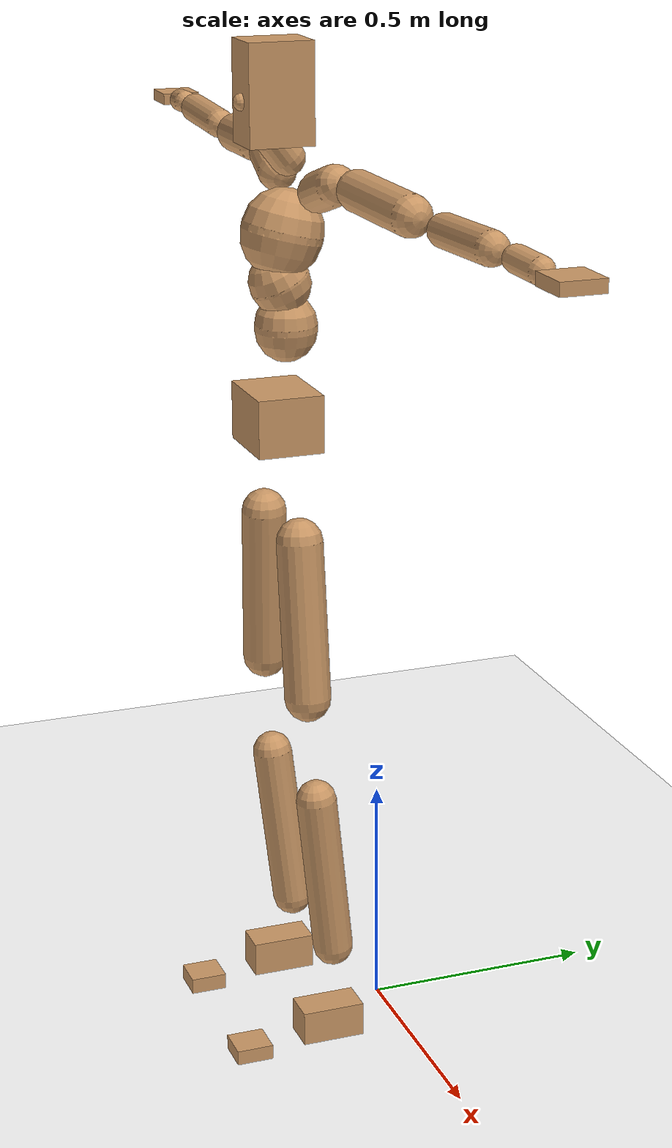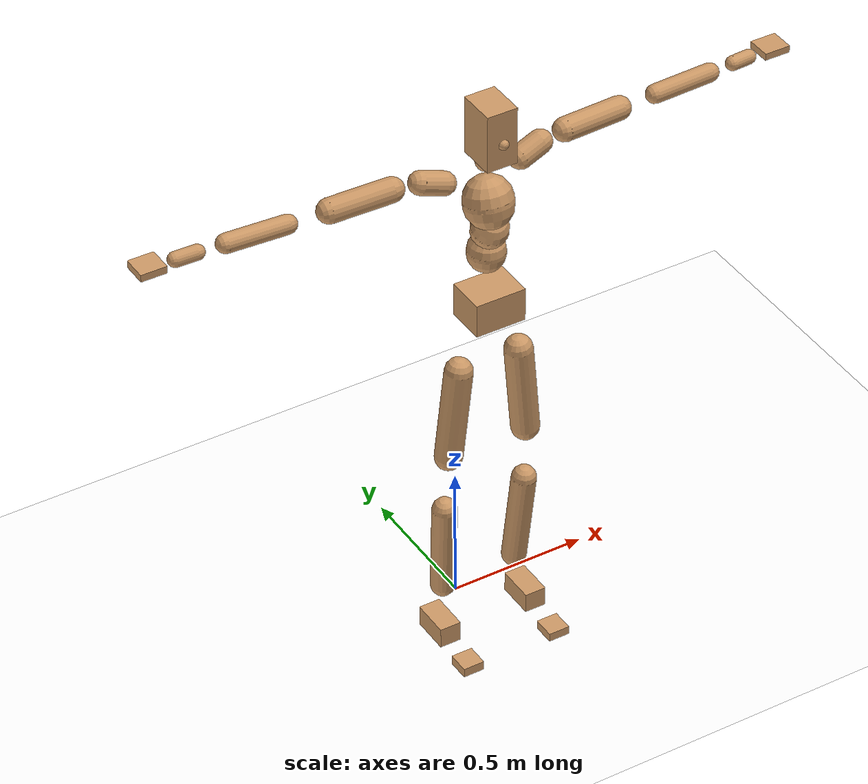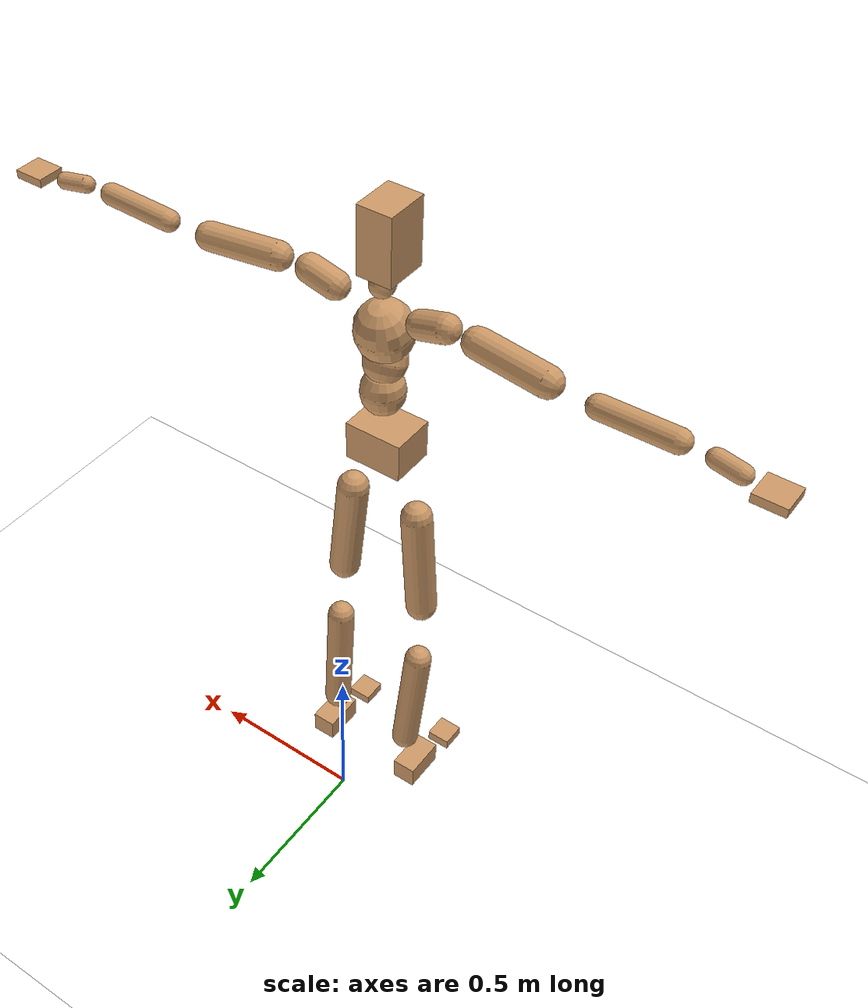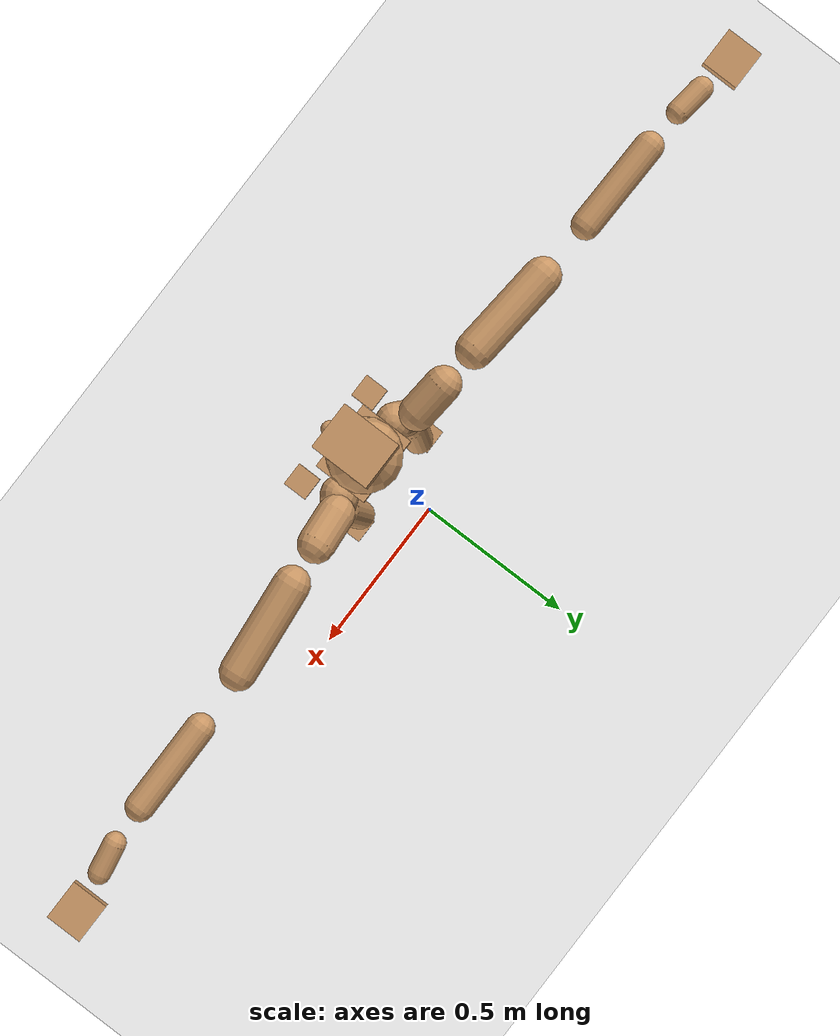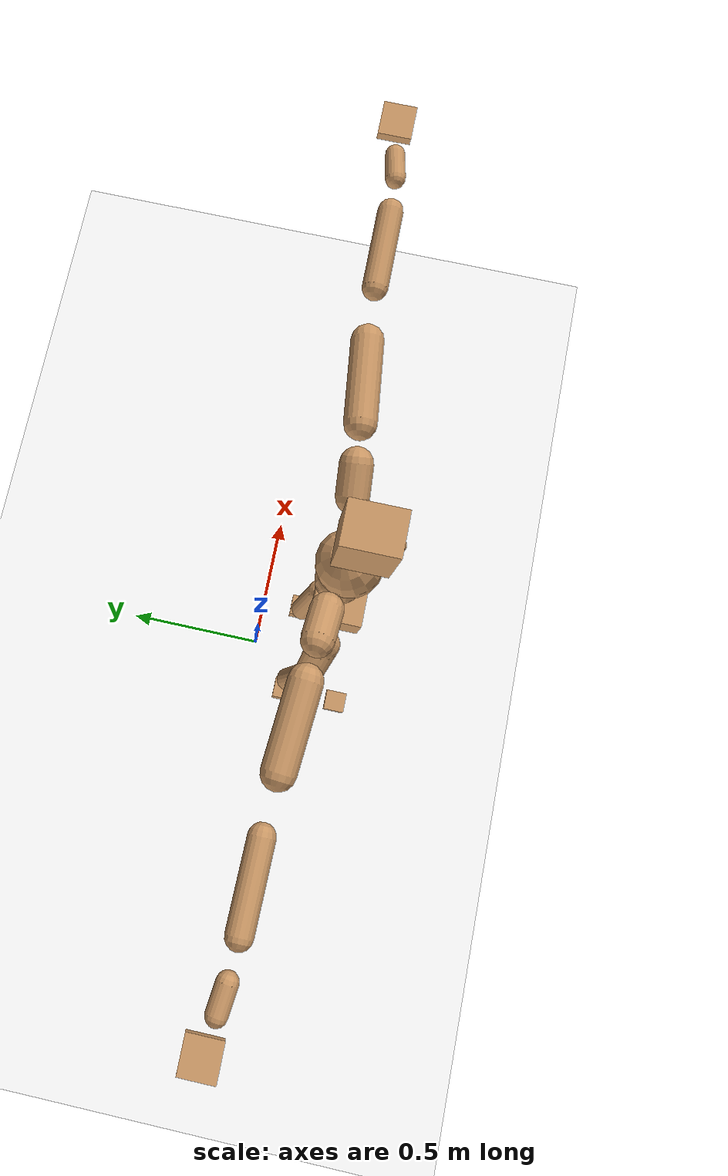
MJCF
<mujoco model="humanoid">
  <option integrator="implicitfast" />

  <visual>
    <global offwidth="1280" offheight="960" />
    <headlight active="1" ambient="0.34 0.34 0.34" diffuse="0.5 0.5 0.5" />
  </visual>

  <default>
    <joint damping="2" stiffness="2" armature="0.01" limited="true" solimplimit="0 .99 .01" />
    <geom condim="1" friction="0.7 0.005 0.0001" solimp=".99 .99 .003" solref="0.015 1" margin="0.001" rgba="0.8 0.6 .4 1" />
    <default class="smplcontact">
      <geom condim="3" friction="1. 0.005 0.0001" solref="0.015 1" solimp="0.98 0.98 0.001" priority="1" />
    </default>
    <default class="stiff_medium">
      <joint stiffness="10" />
    </default>
    <default class="stiff_medium_higher">
      <joint stiffness="50" />
    </default>
    <default class="stiff_high">
      <joint stiffness="100" />
    </default>
  </default>

  <asset>
    <texture type="skybox" builtin="gradient" rgb1="0.99 0.99 0.99" rgb2="0.608 0.828 0.892" width="100" />
    <texture builtin="flat" height="1278" mark="cross" markrgb="1 1 1" name="texgeom" random="0.01" rgb1="0.8 0.6 0.4" rgb2="0.8 0.6 0.4" type="cube" width="127" />
    <texture name="texplane" type="2d" builtin="checker" markrgb="1 1 1" rgb1="0.756 0.772 0.76" rgb2="0.6 0.6 0.6" width="100" height="100" />
    <material name="MatPlane" reflectance="0.5" texture="texplane" texrepeat="1 1" texuniform="true" />
    <material name="geom" texture="texgeom" texuniform="true" />
  </asset>

  <worldbody>
    <light name="tracking_light" pos="0 0 7" dir="0 0 -1" directional="true" cutoff="100" exponent="1" diffuse="1 1 1" specular="0.1 0.1 0.1" mode="trackcom" />
    <camera name="back" pos="0 3 2.4" xyaxes="-1 0 0 0 -1 2" mode="trackcom" />
    <camera name="side" pos="-3 0 2.4" xyaxes="0 -1 0 1 0 2" mode="trackcom" />
    <camera name="front_side" pos="-2.8 -2.8 0.8" xyaxes="0.5 -0.5 0 0.1 0.1 1" mode="trackcom" />
    <geom condim="3" name="floor" pos="0 0 0" rgba="1 1 1 1" size="100 100 .2" type="plane" material="MatPlane" />
    <body name="Pelvis" pos="-0.0018 -0.2233 1.38993" euler="90 0 0">
      <site name="Pelvis" size="0.01" />
      <freejoint name="Pelvis" />
      <geom type="box" pos="-0.0000 -0.0121 -0.0055" size="0.090865 0.06137 0.07055" quat="1.0000 0.0000 0.0000 0.0000" density="3165.830099" name="Pelvis" />
      <body name="L_Hip" pos="0.10425 -0.1371 -0.0102">
        <joint name="L_Hip_x" type="hinge" pos="0 0 0" axis="1 0 0" stiffness="12.169615104166667" range="-160.0 22.92" class="stiff_medium" damping="21.529473071814813" armature="0.01692806977898033"/>
        <joint name="L_Hip_y" type="hinge" pos="0 0 0" axis="0 1 0" stiffness="12.046747812500001" range="-70.0 70.0" class="stiff_medium" damping="10.798581112865591" armature="0.00967973729226246"/>
        <joint name="L_Hip_z" type="hinge" pos="0 0 0" axis="0 0 1" stiffness="12.057664166666665" range="-28.65 90.0" class="stiff_medium" damping="14.291208961157817" armature="0.016938492459932158"/>
        <geom type="capsule" density="2040.816327" fromto="0.01035 -0.1125 -0.00135 0.0411 -0.4503 -0.0054" size="0.0492" name="L_Hip" />
        <body name="L_Knee" pos="0.05145 -0.5628 -0.00675">
          <joint name="L_Knee_x" type="hinge" pos="0 0 0" axis="1 0 0" range="-5.16 171.89" damping="10.487260202512825" armature="0.015065006258335938" stiffness="2.2814176250000004"/>
          <joint name="L_Knee_y" type="hinge" pos="0 0 0" axis="0 1 0" range="-4.58 6.88" damping="8.076823509595332" armature="0.008583091260769572" stiffness="2.375130504528985"/>
          <joint name="L_Knee_z" type="hinge" pos="0 0 0" axis="0 0 1" range="-6.88 4.58" damping="10.435775860746794" armature="0.015107818478948246" stiffness="2.252670901152482"/>
          <geom type="capsule" density="1234.567901" fromto="-0.00405 -0.1194 -0.01305 -0.01635 -0.4776 -0.0525" size="0.04328" name="L_Knee" />
          <body name="L_Ankle" pos="-0.0204 -0.597 -0.06555">
            <joint name="L_Ankle_x" type="hinge" pos="0 0 0" axis="1 0 0" range="-45.84 45.84" class="stiff_medium" damping="4.904065855906098" armature="0.008698590103828127" stiffness="7.679999999999999"/>
            <joint name="L_Ankle_y" type="hinge" pos="0 0 0" axis="0 1 0" range="-74.48 22.92" class="stiff_medium" damping="2.4234373706763983" armature="0.008496887571746145" stiffness="7.679999999999999"/>
            <joint name="L_Ankle_z" type="hinge" pos="0 0 0" axis="0 0 1" range="-4.58 4.58" class="stiff_medium" damping="4.454365704406647" armature="0.007176422825735725" stiffness="7.679999999999999"/>
            <geom type="box" pos="0.03495 -0.03585 0.0363" size="0.03864 0.03712 0.068" quat="1.0000 0.0000 0.0000 0.0000" density="449.071558" name="L_Ankle" class="smplcontact" />
            <body name="L_Toe" pos="0.0396 -0.0837 0.17895">
              <joint name="L_Toe_x" type="hinge" pos="0 0 0" axis="1 0 0" range="-91.67 22.92" armature="0.006410764991481244" damping="1.4033484974813055" stiffness="1.5359999999999998"/>
              <joint name="L_Toe_y" type="hinge" pos="0 0 0" axis="0 1 0" range="-4.58 4.58" armature="0.005484931343289602" damping="1.2980642929603161" stiffness="1.5359999999999998"/>
              <joint name="L_Toe_z" type="hinge" pos="0 0 0" axis="0 0 1" range="-4.58 4.58" armature="0.003612945539412348" damping="1.0535164306775064" stiffness="1.5359999999999998"/>
              <geom type="box" pos="-0.0045 0.00825 0.0372" size="0.03824 0.016 0.03968" quat="1.0000 0.0000 0.0000 0.0000" density="423.206892" name="L_Toe" class="smplcontact" />
            </body>
          </body>
        </body>
      </body>
      <body name="R_Hip" pos="-0.10155 -0.13575 -0.00645">
        <joint name="R_Hip_x" type="hinge" pos="0 0 0" axis="1 0 0" stiffness="12.169615104166667" range="-160.0 22.92" class="stiff_medium" damping="21.529473071814813" armature="0.01692806977898033"/>
        <joint name="R_Hip_y" type="hinge" pos="0 0 0" axis="0 1 0" stiffness="12.046747812500001" range="-70.0 70.0" class="stiff_medium" damping="10.798581112865591" armature="0.00967973729226246"/>
        <joint name="R_Hip_z" type="hinge" pos="0 0 0" axis="0 0 1" stiffness="12.057664166666665" range="-90.0 28.65" class="stiff_medium" damping="14.291208961157817" armature="0.016938492459932158"/>
        <geom type="capsule" density="2040.816327" fromto="-0.01155 -0.11475 -0.0027 -0.0459 -0.45915 -0.01065" size="0.04848" name="R_Hip" />
        <body name="R_Knee" pos="-0.05745 -0.5739 -0.01335">
          <joint name="R_Knee_x" type="hinge" pos="0 0 0" axis="1 0 0" range="-5.16 171.89" damping="10.487260202512825" armature="0.015065006258335938" stiffness="2.2814176250000004"/>
          <joint name="R_Knee_y" type="hinge" pos="0 0 0" axis="0 1 0" range="-6.88 4.58" damping="8.076823509595332" armature="0.008583091260769572" stiffness="2.375130504528985"/>
          <joint name="R_Knee_z" type="hinge" pos="0 0 0" axis="0 0 1" range="-4.58 6.88" damping="10.435775860746794" armature="0.015107818478948246" stiffness="2.252670901152482"/>
          <geom type="capsule" density="1234.567901" fromto="0.0048 -0.11955 -0.01275 0.0189 -0.47805 -0.0507" size="0.04328" name="R_Knee" />
          <body name="R_Ankle" pos="0.0237 -0.5976 -0.06345">
            <joint name="R_Ankle_x" type="hinge" pos="0 0 0" axis="1 0 0" range="-45.84 45.84" class="stiff_medium" damping="4.904065855906098" armature="0.008698590103828127" stiffness="7.679999999999999"/>
            <joint name="R_Ankle_y" type="hinge" pos="0 0 0" axis="0 1 0" range="-22.92 74.48" class="stiff_medium" damping="2.4234373706763983" armature="0.008496887571746145" stiffness="7.679999999999999"/>
            <joint name="R_Ankle_z" type="hinge" pos="0 0 0" axis="0 0 1" range="-4.58 4.58" class="stiff_medium" damping="4.454365704406647" armature="0.007176422825735725" stiffness="7.679999999999999"/>
            <geom type="box" pos="-0.0318 -0.0261 0.0384" size="0.03864 0.03824 0.0692" quat="1.0000 0.0000 0.0000 0.0000" density="434.700981" name="R_Ankle" class="smplcontact" />
            <body name="R_Toe" pos="-0.0381 -0.07215 0.18495">
              <joint name="R_Toe_x" type="hinge" pos="0 0 0" axis="1 0 0" range="-91.67 22.92" armature="0.006410764991481244" damping="1.4033484974813055" stiffness="1.5359999999999998"/>
              <joint name="R_Toe_y" type="hinge" pos="0 0 0" axis="0 1 0" range="-4.58 4.58" armature="0.005484931343289602" damping="1.2980642929603161" stiffness="1.5359999999999998"/>
              <joint name="R_Toe_z" type="hinge" pos="0 0 0" axis="0 0 1" range="-4.58 4.58" armature="0.003612945539412348" damping="1.0535164306775064" stiffness="1.5359999999999998"/>
              <geom type="box" pos="0.0063 0.00675 0.03405" size="0.03832 0.01728 0.03944" quat="1.0000 0.0000 0.0000 0.0000" density="407.384095" name="R_Toe" class="smplcontact" />
            </body>
          </body>
        </body>
      </body>
      <body name="Torso" pos="-0.0025 0.109 -0.0267">
        <joint name="Torso_x" type="hinge" pos="0 0 0" axis="1 0 0" range="-25.78 57.3" class="stiff_medium" damping="11.249635746720276" armature="0.007804134641765574" stiffness="7.207251041666667"/>
        <joint name="Torso_y" type="hinge" pos="0 0 0" axis="0 1 0" range="-57.3 57.3" class="stiff_high" damping="20.05969828917201" armature="0.0139324282443363" stiffness="72.20412127659574"/>
        <joint name="Torso_z" type="hinge" pos="0 0 0" axis="0 0 1" range="-34.38 34.38" class="stiff_high" damping="16.695147071302408" armature="0.009916820498493354" stiffness="70.26645681818181"/>
        <geom type="capsule" density="2040.816327" fromto="0.0025 0.0608 0.0005 0.003 0.0743 0.0006" size="0.065365" name="Torso" />
        <body name="Spine" pos="0.0055 0.1352 0.0011">
          <joint name="Spine_x" type="hinge" pos="0 0 0" axis="1 0 0" stiffness="7.440407291666666" range="-25.78 57.3" class="stiff_medium" damping="11.740807544291355" armature="0.008234110872247447"/>
          <joint name="Spine_y" type="hinge" pos="0 0 0" axis="0 1 0" stiffness="7.7584475" range="-57.3 57.3" class="stiff_high" damping="8.336368909664587" armature="0.01399584263596679"/>
          <joint name="Spine_z" type="hinge" pos="0 0 0" axis="0 0 1" stiffness="15.332734893617019" range="-34.38 34.38" class="stiff_high" damping="11.248532857716054" armature="0.011461451985736558"/>
          <geom type="capsule" density="2040.816327" fromto="0.0007 0.0238 0.0114 0.0008 0.0291 0.014" size="0.064175" name="Spine" />
          <body name="Chest" pos="0.0015 0.0529 0.0254">
            <joint name="Chest_x" type="hinge" pos="0 0 0" axis="1 0 0" stiffness="8.003657173913044" range="-25.78 57.3" class="stiff_medium" damping="12.363972084001938" armature="0.008488775255960262"/>
            <joint name="Chest_y" type="hinge" pos="0 0 0" axis="0 1 0" stiffness="9.188864186046512" range="-57.3 57.3" class="stiff_high" damping="9.076660553574975" armature="0.014009104719167938"/>
            <joint name="Chest_z" type="hinge" pos="0 0 0" axis="0 0 1" stiffness="15.924538222222221" range="-34.38 34.38" class="stiff_high" damping="11.796414570397653" armature="0.012136702592671206"/>
            <geom type="capsule" density="2040.816327" fromto="-0.0009 0.0682 -0.0173 -0.001 0.0833 -0.0212" size="0.08517" name="Chest" />
            <body name="Neck" pos="-0.0028 0.2139 -0.0429">
              <joint name="Neck_x" type="hinge" pos="0 0 0" axis="1 0 0" range="-28.65 57.3" class="stiff_medium_higher" damping="6.666103964048796" armature="0.006435654306996814" stiffness="34.524028125"/>
              <joint name="Neck_y" type="hinge" pos="0 0 0" axis="0 1 0" range="-40.11 40.11" class="stiff_medium_higher" damping="6.495163595532797" armature="0.006106427151925058" stiffness="34.54323541666667"/>
              <joint name="Neck_z" type="hinge" pos="0 0 0" axis="0 0 1" range="-40.11 40.11" class="stiff_medium_higher" damping="6.673822506192289" armature="0.00644051335907919" stiffness="34.57791666666667"/>
              <geom type="capsule" density="1000" fromto="0.001 0.013 0.0103 0.0041 0.052 0.0411" size="0.03706" name="Neck" />
              <body name="Head" pos="0.00494 0.06175 0.048735">
                <joint name="Head_x" type="hinge" pos="0 0 0" axis="1 0 0" range="-28.65 57.3" class="stiff_medium_higher" damping="1.3185946842092995" armature="0.006276413043191909" stiffness="34.6275"/>
                <joint name="Head_y" type="hinge" pos="0 0 0" axis="0 1 0" range="-40.11 40.11" class="stiff_medium_higher" damping="1.2823363817030833" armature="0.00593598511240833" stiffness="34.6275"/>
                <joint name="Head_z" type="hinge" pos="0 0 0" axis="0 0 1" range="-40.11 40.11" class="stiff_medium_higher" damping="1.3203641162255402" armature="0.006293269075936942" stiffness="34.6275"/>
                <geom type="box" pos="-0.00399 0.08322 -0.01102" size="0.05454 0.10386 0.0684" quat="1.0000 0.0000 0.0000 0.0000" density="1018.069894" name="Head" />
                <geom type="capsule" name="nose" size="0.018 0.009" pos="0 0.0665 0.0475" quat="1 0 0 0" mass="0" contype="0" conaffinity="0" />
              </body>
            </body>
            <body name="L_Thorax" pos="0.11032 0.17038 -0.04774">
              <joint name="L_Thorax_x" type="hinge" pos="0 0 0" axis="1 0 0" range="-10.89 4.58" class="stiff_medium_higher" damping="20.482438466690972" armature="0.010040373941433294" stiffness="52.230410937500004"/>
              <joint name="L_Thorax_y" type="hinge" pos="0 0 0" axis="0 1 0" range="-28.65 17.19" class="stiff_medium_higher" damping="24.49886040985026" armature="0.014178353362015868" stiffness="52.91465677083333"/>
              <joint name="L_Thorax_z" type="hinge" pos="0 0 0" axis="0 0 1" range="-31.51 40.11" class="stiff_medium_higher" damping="24.50010028143286" armature="0.014182281674176393" stiffness="52.905354687499994"/>
              <geom type="capsule" density="1000" fromto="0.02548 0.00854 -0.00252 0.10192 0.03416 -0.00994" size="0.04168" name="L_Thorax" />
              <body name="L_Shoulder" pos="0.1274 0.0427 -0.01246">
                <joint name="L_Shoulder_x" type="hinge" pos="0 0 0" axis="1 0 0" range="-97.4 97.4" class="stiff_medium" damping="5.54428182110267" armature="0.008253764961067488" stiffness="10.3451310660461"/>
                <joint name="L_Shoulder_y" type="hinge" pos="0 0 0" axis="0 1 0" range="-108.86 80.21" class="stiff_medium" damping="7.275199924466549" armature="0.013954779840497453" stiffness="10.535723749999999"/>
                <joint name="L_Shoulder_z" type="hinge" pos="0 0 0" axis="0 0 1" range="-97.4 85.94" class="stiff_medium" damping="7.270630771793183" armature="0.013959146049897795" stiffness="10.5192028125"/>
                <geom type="capsule" density="1000" fromto="0.07266 -0.00364 -0.0077 0.29078 -0.01428 -0.0308" size="0.04136" name="L_Shoulder" />
                <body name="L_Elbow" pos="0.36344 -0.01792 -0.0385">
                  <joint name="L_Elbow_x" type="hinge" pos="0 0 0" axis="1 0 0" range="-17.19 4.58" damping="3.761947498802039" armature="0.005684788079689243" stiffness="1.9915956458333335"/>
                  <joint name="L_Elbow_y" type="hinge" pos="0 0 0" axis="0 1 0" range="-180.0 17.19" damping="5.663989086512743" armature="0.012878012747804207" stiffness="1.9929020416666665"/>
                  <joint name="L_Elbow_z" type="hinge" pos="0 0 0" axis="0 0 1" range="-100.84 4.58" damping="5.665140058693131" armature="0.012900776049366134" stiffness="1.9901941875000002"/>
                  <geom type="capsule" density="1000" fromto="0.06972 0.00252 -0.00028 0.27916 0.01008 -0.00126" size="0.0324" name="L_Elbow" />
                  <body name="L_Wrist" pos="0.34888 0.0126 -0.00168">
                    <joint name="L_Wrist_x" type="hinge" pos="0 0 0" axis="1 0 0" range="-180.0 22.92" armature="0.005479975993685243" damping="1.3401334874553132" stiffness="1.6386547735507246"/>
                    <joint name="L_Wrist_y" type="hinge" pos="0 0 0" axis="0 1 0" range="-17.19 17.19" armature="0.009871088387300156" damping="1.808949135984064" stiffness="1.6575157916666667"/>
                    <joint name="L_Wrist_z" type="hinge" pos="0 0 0" axis="0 0 1" range="-22.92 22.92" armature="0.010103944512787441" damping="1.8235098414234472" stiffness="1.6454901041666667"/>
                    <geom type="capsule" density="1000" fromto="0.02352 -0.00224 -0.0042 0.09408 -0.0091 -0.0168" size="0.02544" name="L_Wrist" class="smplcontact" />
                    <body name="L_Hand" pos="0.1176 -0.01148 -0.02086">
                      <joint name="L_Hand_x" type="hinge" pos="0 0 0" axis="1 0 0" range="-17.19 17.19" armature="0.0035712375392624386" damping="1.0119017873575116" stiffness="1.4336"/>
                      <joint name="L_Hand_y" type="hinge" pos="0 0 0" axis="0 1 0" range="-51.57 51.57" armature="0.006837615817148067" damping="1.4001718491287753" stiffness="1.4336"/>
                      <joint name="L_Hand_z" type="hinge" pos="0 0 0" axis="0 0 1" range="-91.67 91.67" armature="0.007708313575910548" damping="1.4866498136700088" stiffness="1.4336"/>
                      <geom type="box" pos="0.06902 0.0014 -0.00812" size="0.0468 0.01264 0.04304" quat="1.0000 0.0000 0.0000 0.0000" density="400.552564" name="L_Hand" class="smplcontact" />
                    </body>
                  </body>
                </body>
              </body>
            </body>
            <body name="R_Thorax" pos="-0.11452 0.16632 -0.05404">
              <joint name="R_Thorax_x" type="hinge" pos="0 0 0" axis="1 0 0" range="-10.89 4.58" class="stiff_medium_higher" damping="20.482438466690972" armature="0.010040373941433294" stiffness="52.230410937500004"/>
              <joint name="R_Thorax_y" type="hinge" pos="0 0 0" axis="0 1 0" range="-17.19 28.65" class="stiff_medium_higher" damping="24.49886040985026" armature="0.014178353362015868" stiffness="52.91465677083333"/>
              <joint name="R_Thorax_z" type="hinge" pos="0 0 0" axis="0 0 1" range="-40.11 31.51" class="stiff_medium_higher" damping="24.50010028143286" armature="0.014182281674176393" stiffness="52.905354687499994"/>
              <geom type="capsule" density="1000" fromto="-0.02688 0.0091 -0.00252 -0.10752 0.0364 -0.01022" size="0.04088" name="R_Thorax" />
              <body name="R_Shoulder" pos="-0.1344 0.04564 -0.01274">
                <joint name="R_Shoulder_x" type="hinge" pos="0 0 0" axis="1 0 0" range="-97.4 97.4" class="stiff_medium" damping="5.54428182110267" armature="0.008253764961067488" stiffness="10.3451310660461"/>
                <joint name="R_Shoulder_y" type="hinge" pos="0 0 0" axis="0 1 0" range="-80.21 108.86" class="stiff_medium" damping="7.275199924466549" armature="0.013954779840497453" stiffness="10.535723749999999"/>
                <joint name="R_Shoulder_z" type="hinge" pos="0 0 0" axis="0 0 1" range="-85.94 97.4" class="stiff_medium" damping="7.270630771793183" armature="0.013959146049897795" stiffness="10.5192028125"/>
                <geom type="capsule" density="1000" fromto="-0.07098 -0.00378 -0.00602 -0.2842 -0.01498 -0.02394" size="0.04248" name="R_Shoulder" />
                <body name="R_Elbow" pos="-0.35518 -0.01862 -0.02996">
                  <joint name="R_Elbow_x" type="hinge" pos="0 0 0" axis="1 0 0" range="-17.19 4.58" damping="3.761947498802039" armature="0.005684788079689243" stiffness="1.9915956458333335"/>
                  <joint name="R_Elbow_y" type="hinge" pos="0 0 0" axis="0 1 0" range="-17.19 180.0" damping="5.663989086512743" armature="0.012878012747804207" stiffness="1.9929020416666665"/>
                  <joint name="R_Elbow_z" type="hinge" pos="0 0 0" axis="0 0 1" range="-4.58 100.84" damping="5.665140058693131" armature="0.012900776049366134" stiffness="1.9901941875000002"/>
                  <geom type="capsule" density="1000" fromto="-0.07154 0.00224 -0.00154 -0.28588 0.00868 -0.00616" size="0.03264" name="R_Elbow" />
                  <body name="R_Wrist" pos="-0.35742 0.01092 -0.00784">
                    <joint name="R_Wrist_x" type="hinge" pos="0 0 0" axis="1 0 0" range="-180.0 22.92" armature="0.005479975993685243" damping="1.3401334874553132" stiffness="1.6386547735507246"/>
                    <joint name="R_Wrist_y" type="hinge" pos="0 0 0" axis="0 1 0" range="-17.19 17.19" armature="0.009871088387300156" damping="1.808949135984064" stiffness="1.6575157916666667"/>
                    <joint name="R_Wrist_z" type="hinge" pos="0 0 0" axis="0 0 1" range="-22.92 22.92" armature="0.010103944512787441" damping="1.8235098414234472" stiffness="1.6454901041666667"/>
                    <geom type="capsule" density="1000" fromto="-0.02366 -0.00168 -0.00294 -0.09478 -0.00686 -0.01162" size="0.02608" name="R_Wrist" class="smplcontact" />
                    <body name="R_Hand" pos="-0.11844 -0.00854 -0.01442">
                      <joint name="R_Hand_x" type="hinge" pos="0 0 0" axis="1 0 0" range="-17.19 17.19" armature="0.0035712375392624386" damping="1.0119017873575116" stiffness="1.4336"/>
                      <joint name="R_Hand_y" type="hinge" pos="0 0 0" axis="0 1 0" range="-51.57 51.57" armature="0.006837615817148067" damping="1.4001718491287753" stiffness="1.4336"/>
                      <joint name="R_Hand_z" type="hinge" pos="0 0 0" axis="0 0 1" range="-91.67 91.67" armature="0.007708313575910548" damping="1.4866498136700088" stiffness="1.4336"/>
                      <geom type="box" pos="-0.06468 -0.00126 -0.01106" size="0.04552 0.01312 0.04368" quat="1.0000 0.0000 0.0000 0.0000" density="403.679611" name="R_Hand" class="smplcontact" />
                    </body>
                  </body>
                </body>
              </body>
            </body>
          </body>
        </body>
      </body>
    </body>
  </worldbody>
  <actuator>
    <general name="L_Hip_x" joint="L_Hip_x" biastype="affine" gainprm="349.6696287919952" biasprm="-262.0419457402509 -219.053071875 -2.8705964095753083" ctrllimited="true" ctrlrange="-1 1" forcerange="-438.10614375 438.10614375" />
    <general name="L_Hip_y" joint="L_Hip_y" biastype="affine" gainprm="264.9218209917924" biasprm="0.0 -216.841460625 -2.159716222573118" ctrllimited="true" ctrlrange="-1 1" forcerange="-433.68292125 433.68292125" />
    <general name="L_Hip_z" joint="L_Hip_z" biastype="affine" gainprm="224.72469682404932" biasprm="116.19772566502674 -217.03795499999998 -2.8582417922315635" ctrllimited="true" ctrlrange="-1 1" forcerange="-434.07590999999996 434.07590999999996" />
    <general name="L_Knee_x" joint="L_Knee_x" biastype="affine" gainprm="317.2419456939406" biasprm="298.7503507797272 -205.32758625000005 -2.6218150506282063" ctrllimited="true" ctrlrange="-1 1" forcerange="-410.6551725000001 410.6551725000001" />
    <general name="L_Knee_y" joint="L_Knee_y" biastype="affine" gainprm="21.377749139549223" biasprm="4.290473212998536 -213.76174540760866 -2.019205877398833" ctrllimited="true" ctrlrange="-1 1" forcerange="-427.5234908152173 427.5234908152173" />
    <general name="L_Knee_z" joint="L_Knee_z" biastype="affine" gainprm="20.27553152425623" biasprm="-4.069260253559278 -202.7403811037234 -2.6089439651866986" ctrllimited="true" ctrlrange="-1 1" forcerange="-405.4807622074468 405.4807622074468" />
    <general name="L_Ankle_x" joint="L_Ankle_x" biastype="affine" gainprm="55.30007318037355" biasprm="0.0 -69.11999999999999 -1.634688618635366" ctrllimited="true" ctrlrange="-1 1" forcerange="-138.23999999999998 138.23999999999998" />
    <general name="L_Ankle_y" joint="L_Ankle_y" biastype="affine" gainprm="58.750295896252005" biasprm="-31.10025930606523 -69.11999999999999 -1.6156249137842655" ctrllimited="true" ctrlrange="-1 1" forcerange="-138.23999999999998 138.23999999999998" />
    <general name="L_Ankle_z" joint="L_Ankle_z" biastype="affine" gainprm="5.52518183172144" biasprm="0.0 -69.11999999999999 -1.484788568135549" ctrllimited="true" ctrlrange="-1 1" forcerange="-138.23999999999998 138.23999999999998" />
    <general name="L_Toe_x" joint="L_Toe_x" biastype="affine" gainprm="55.29524769405762" biasprm="-33.175218421908205 -55.29599999999999 -0.5613393989925223" ctrllimited="true" ctrlrange="-1 1" forcerange="-110.59199999999998 110.59199999999998" />
    <general name="L_Toe_y" joint="L_Toe_y" biastype="affine" gainprm="4.420145465377153" biasprm="0.0 -55.29599999999999 -0.5192257171841265" ctrllimited="true" ctrlrange="-1 1" forcerange="-110.59199999999998 110.59199999999998" />
    <general name="L_Toe_z" joint="L_Toe_z" biastype="affine" gainprm="4.420145465377153" biasprm="0.0 -55.29599999999999 -0.4214065722710026" ctrllimited="true" ctrlrange="-1 1" forcerange="-110.59199999999998 110.59199999999998" />
    <general name="R_Hip_x" joint="R_Hip_x" biastype="affine" gainprm="349.6696287919952" biasprm="-262.0419457402509 -219.053071875 -2.8705964095753083" ctrllimited="true" ctrlrange="-1 1" forcerange="-438.10614375 438.10614375" />
    <general name="R_Hip_y" joint="R_Hip_y" biastype="affine" gainprm="264.9218209917924" biasprm="0.0 -216.841460625 -2.159716222573118" ctrllimited="true" ctrlrange="-1 1" forcerange="-433.68292125 433.68292125" />
    <general name="R_Hip_z" joint="R_Hip_z" biastype="affine" gainprm="224.72469682404932" biasprm="-116.19772566502674 -217.03795499999998 -2.8582417922315635" ctrllimited="true" ctrlrange="-1 1" forcerange="-434.07590999999996 434.07590999999996" />
    <general name="R_Knee_x" joint="R_Knee_x" biastype="affine" gainprm="317.2419456939406" biasprm="298.7503507797272 -205.32758625000005 -2.6218150506282063" ctrllimited="true" ctrlrange="-1 1" forcerange="-410.6551725000001 410.6551725000001" />
    <general name="R_Knee_y" joint="R_Knee_y" biastype="affine" gainprm="21.377749139549223" biasprm="-4.290473212998536 -213.76174540760866 -2.019205877398833" ctrllimited="true" ctrlrange="-1 1" forcerange="-427.5234908152173 427.5234908152173" />
    <general name="R_Knee_z" joint="R_Knee_z" biastype="affine" gainprm="20.27553152425623" biasprm="4.069260253559278 -202.7403811037234 -2.6089439651866986" ctrllimited="true" ctrlrange="-1 1" forcerange="-405.4807622074468 405.4807622074468" />
    <general name="R_Ankle_x" joint="R_Ankle_x" biastype="affine" gainprm="55.30007318037355" biasprm="0.0 -69.11999999999999 -1.634688618635366" ctrllimited="true" ctrlrange="-1 1" forcerange="-138.23999999999998 138.23999999999998" />
    <general name="R_Ankle_y" joint="R_Ankle_y" biastype="affine" gainprm="58.750295896252005" biasprm="31.10025930606523 -69.11999999999999 -1.6156249137842655" ctrllimited="true" ctrlrange="-1 1" forcerange="-138.23999999999998 138.23999999999998" />
    <general name="R_Ankle_z" joint="R_Ankle_z" biastype="affine" gainprm="5.52518183172144" biasprm="0.0 -69.11999999999999 -1.484788568135549" ctrllimited="true" ctrlrange="-1 1" forcerange="-138.23999999999998 138.23999999999998" />
    <general name="R_Toe_x" joint="R_Toe_x" biastype="affine" gainprm="55.29524769405762" biasprm="-33.175218421908205 -55.29599999999999 -0.5613393989925223" ctrllimited="true" ctrlrange="-1 1" forcerange="-110.59199999999998 110.59199999999998" />
    <general name="R_Toe_y" joint="R_Toe_y" biastype="affine" gainprm="4.420145465377153" biasprm="0.0 -55.29599999999999 -0.5192257171841265" ctrllimited="true" ctrlrange="-1 1" forcerange="-110.59199999999998 110.59199999999998" />
    <general name="R_Toe_z" joint="R_Toe_z" biastype="affine" gainprm="4.420145465377153" biasprm="0.0 -55.29599999999999 -0.4214065722710026" ctrllimited="true" ctrlrange="-1 1" forcerange="-110.59199999999998 110.59199999999998" />
    <general name="Torso_x" joint="Torso_x" biastype="affine" gainprm="125.40785830236194" biasprm="47.57890820522927 -172.974025 -2.9999028657920737" ctrllimited="true" ctrlrange="-1 1" forcerange="-259.46103750000003 259.46103750000003" />
    <general name="Torso_y" joint="Torso_y" biastype="affine" gainprm="173.30265583855518" biasprm="0.0 -173.2898910638298 -4.011939657834402" ctrllimited="true" ctrlrange="-1 1" forcerange="-259.9348365957447 259.9348365957447" />
    <general name="Torso_z" joint="Torso_z" biastype="affine" gainprm="101.19115115028679" biasprm="0.0 -168.63949636363634 -3.339029414260482" ctrllimited="true" ctrlrange="-1 1" forcerange="-252.9592445454545 252.9592445454545" />
    <general name="Spine_x" joint="Spine_x" biastype="affine" gainprm="129.46483172999328" biasprm="49.118096968336395 -178.569775 -3.130882011811028" ctrllimited="true" ctrlrange="-1 1" forcerange="-267.8546625 267.8546625" />
    <general name="Spine_y" joint="Spine_y" biastype="affine" gainprm="186.2164559531624" biasprm="0.0 -186.20274 -4.168184454832294" ctrllimited="true" ctrlrange="-1 1" forcerange="-279.30411 279.30411" />
    <general name="Spine_z" joint="Spine_z" biastype="affine" gainprm="110.40382313441255" biasprm="0.0 -183.99281872340424 -3.7495109525720176" ctrllimited="true" ctrlrange="-1 1" forcerange="-275.98922808510633 275.98922808510633" />
    <general name="Chest_x" joint="Chest_x" biastype="affine" gainprm="139.26551176919466" biasprm="52.83640985754712 -192.08777217391304 -3.297059222400517" ctrllimited="true" ctrlrange="-1 1" forcerange="-288.1316582608696 288.1316582608696" />
    <general name="Chest_y" joint="Chest_y" biastype="affine" gainprm="220.54898521392607" biasprm="0.0 -220.53274046511626 -4.538330276787487" ctrllimited="true" ctrlrange="-1 1" forcerange="-330.7991106976744 330.7991106976744" />
    <general name="Chest_z" joint="Chest_z" biastype="affine" gainprm="114.66512097038343" biasprm="0.0 -191.09445866666667 -3.932138190132551" ctrllimited="true" ctrlrange="-1 1" forcerange="-286.641688 286.641688" />
    <general name="Neck_x" joint="Neck_x" biastype="affine" gainprm="18.64434845501733" biasprm="6.21478281833911 -24.85730025 -0.5332883171239037" ctrllimited="true" ctrlrange="-1 1" forcerange="-49.7146005 49.7146005" />
    <general name="Neck_y" joint="Neck_y" biastype="affine" gainprm="17.411073079426778" biasprm="0.0 -24.871129500000002 -0.5196130876426238" ctrllimited="true" ctrlrange="-1 1" forcerange="-49.742259000000004 49.742259000000004" />
    <general name="Neck_z" joint="Neck_z" biastype="affine" gainprm="17.428553716980044" biasprm="0.0 -24.8961 -0.5339058004953832" ctrllimited="true" ctrlrange="-1 1" forcerange="-49.7922 49.7922" />
    <general name="Head_x" joint="Head_x" biastype="affine" gainprm="12.46681825555589" biasprm="4.155606085185297 -16.621199999999998 -0.5274378736837199" ctrllimited="true" ctrlrange="-1 1" forcerange="-33.242399999999996 33.242399999999996" />
    <general name="Head_y" joint="Head_y" biastype="affine" gainprm="11.635697038518831" biasprm="0.0 -16.621199999999998 -0.5129345526812333" ctrllimited="true" ctrlrange="-1 1" forcerange="-33.242399999999996 33.242399999999996" />
    <general name="Head_z" joint="Head_z" biastype="affine" gainprm="11.635697038518831" biasprm="0.0 -16.621199999999998 -0.5281456464902161" ctrllimited="true" ctrlrange="-1 1" forcerange="-33.242399999999996 33.242399999999996" />
    <general name="L_Thorax_x" joint="L_Thorax_x" biastype="affine" gainprm="16.922805778780972" biasprm="-6.902579474085842 -125.35298625000001 -1.638595077335278" ctrllimited="true" ctrlrange="-1 1" forcerange="-250.70597250000003 250.70597250000003" />
    <general name="L_Thorax_y" joint="L_Thorax_y" biastype="affine" gainprm="50.80181235662209" biasprm="-12.700453089155522 -126.99517625 -1.9599088327880207" ctrllimited="true" ctrlrange="-1 1" forcerange="-253.9903525 253.9903525" />
    <general name="L_Thorax_z" joint="L_Thorax_z" biastype="affine" gainprm="79.35833741862798" biasprm="9.529205554317238 -126.97285124999999 -1.960008022514629" ctrllimited="true" ctrlrange="-1 1" forcerange="-253.94570249999998 253.94570249999998" />
    <general name="L_Shoulder_x" joint="L_Shoulder_x" biastype="affine" gainprm="84.41382100218297" biasprm="0.0 -49.65662911702128 -1.4784751522940454" ctrllimited="true" ctrlrange="-1 1" forcerange="-99.31325823404256 99.31325823404256" />
    <general name="L_Shoulder_y" joint="L_Shoulder_y" biastype="affine" gainprm="83.44025223530483" biasprm="-12.643799791302074 -50.571473999999995 -1.94005331319108" ctrllimited="true" ctrlrange="-1 1" forcerange="-101.14294799999999 101.14294799999999" />
    <general name="L_Shoulder_z" joint="L_Shoulder_z" biastype="affine" gainprm="80.7846159713762" biasprm="-5.049589282382313 -50.49217349999999 -1.938834872478182" ctrllimited="true" ctrlrange="-1 1" forcerange="-100.98434699999999 100.98434699999999" />
    <general name="L_Elbow_x" joint="L_Elbow_x" biastype="affine" gainprm="13.62101495797008" biasprm="-7.889802417087863 -71.69744325 -0.6019115998083263" ctrllimited="true" ctrlrange="-1 1" forcerange="-143.3948865 143.3948865" />
    <general name="L_Elbow_y" joint="L_Elbow_y" biastype="affine" gainprm="123.45841918630981" biasprm="-101.93349169695777 -71.7444735 -0.9062382538420389" ctrllimited="true" ctrlrange="-1 1" forcerange="-143.488947 143.488947" />
    <general name="L_Elbow_z" joint="L_Elbow_z" biastype="affine" gainprm="65.91258404242865" biasprm="-60.185404476609584 -71.64699075000001 -0.906422409390901" ctrllimited="true" ctrlrange="-1 1" forcerange="-143.29398150000003 143.29398150000003" />
    <general name="L_Wrist_x" joint="L_Wrist_x" biastype="affine" gainprm="17.410487970042706" biasprm="-13.47742682009811 -9.831928641304348 -0.5360533949821253" ctrllimited="true" ctrlrange="-1 1" forcerange="-19.663857282608696 19.663857282608696" />
    <general name="L_Wrist_y" joint="L_Wrist_y" biastype="affine" gainprm="2.983748195859098" biasprm="0.0 -9.94509475 -0.7235796543936256" ctrllimited="true" ctrlrange="-1 1" forcerange="-19.8901895 19.8901895" />
    <general name="L_Wrist_z" joint="L_Wrist_z" biastype="affine" gainprm="3.949467151822794" biasprm="0.0 -9.872940625 -0.729403936569379" ctrllimited="true" ctrlrange="-1 1" forcerange="-19.74588125 19.74588125" />
    <general name="L_Hand_x" joint="L_Hand_x" biastype="affine" gainprm="2.580670081750766" biasprm="0.0 -8.6016 -0.40476071494300464" ctrllimited="true" ctrlrange="-1 1" forcerange="-17.2032 17.2032" />
    <general name="L_Hand_y" joint="L_Hand_y" biastype="affine" gainprm="7.742010245252296" biasprm="0.0 -8.6016 -0.5600687396515102" ctrllimited="true" ctrlrange="-1 1" forcerange="-17.2032 17.2032" />
    <general name="L_Hand_z" joint="L_Hand_z" biastype="affine" gainprm="13.762072506928021" biasprm="0.0 -8.6016 -0.5946599254680035" ctrllimited="true" ctrlrange="-1 1" forcerange="-17.2032 17.2032" />
    <general name="R_Thorax_x" joint="R_Thorax_x" biastype="affine" gainprm="16.922805778780972" biasprm="-6.902579474085842 -125.35298625000001 -1.638595077335278" ctrllimited="true" ctrlrange="-1 1" forcerange="-250.70597250000003 250.70597250000003" />
    <general name="R_Thorax_y" joint="R_Thorax_y" biastype="affine" gainprm="50.80181235662209" biasprm="12.700453089155513 -126.99517625 -1.9599088327880207" ctrllimited="true" ctrlrange="-1 1" forcerange="-253.9903525 253.9903525" />
    <general name="R_Thorax_z" joint="R_Thorax_z" biastype="affine" gainprm="79.35833741862798" biasprm="-9.529205554317238 -126.97285124999999 -1.960008022514629" ctrllimited="true" ctrlrange="-1 1" forcerange="-253.94570249999998 253.94570249999998" />
    <general name="R_Shoulder_x" joint="R_Shoulder_x" biastype="affine" gainprm="84.41382100218297" biasprm="0.0 -49.65662911702128 -1.4784751522940454" ctrllimited="true" ctrlrange="-1 1" forcerange="-99.31325823404256 99.31325823404256" />
    <general name="R_Shoulder_y" joint="R_Shoulder_y" biastype="affine" gainprm="83.44025223530483" biasprm="12.643799791302074 -50.571473999999995 -1.94005331319108" ctrllimited="true" ctrlrange="-1 1" forcerange="-101.14294799999999 101.14294799999999" />
    <general name="R_Shoulder_z" joint="R_Shoulder_z" biastype="affine" gainprm="80.7846159713762" biasprm="5.049589282382302 -50.49217349999999 -1.938834872478182" ctrllimited="true" ctrlrange="-1 1" forcerange="-100.98434699999999 100.98434699999999" />
    <general name="R_Elbow_x" joint="R_Elbow_x" biastype="affine" gainprm="13.62101495797008" biasprm="-7.889802417087863 -71.69744325 -0.6019115998083263" ctrllimited="true" ctrlrange="-1 1" forcerange="-143.3948865 143.3948865" />
    <general name="R_Elbow_y" joint="R_Elbow_y" biastype="affine" gainprm="123.45841918630981" biasprm="101.93349169695777 -71.7444735 -0.9062382538420389" ctrllimited="true" ctrlrange="-1 1" forcerange="-143.488947 143.488947" />
    <general name="R_Elbow_z" joint="R_Elbow_z" biastype="affine" gainprm="65.91258404242865" biasprm="60.18540447660958 -71.64699075000001 -0.906422409390901" ctrllimited="true" ctrlrange="-1 1" forcerange="-143.29398150000003 143.29398150000003" />
    <general name="R_Wrist_x" joint="R_Wrist_x" biastype="affine" gainprm="17.410487970042706" biasprm="-13.47742682009811 -9.831928641304348 -0.5360533949821253" ctrllimited="true" ctrlrange="-1 1" forcerange="-19.663857282608696 19.663857282608696" />
    <general name="R_Wrist_y" joint="R_Wrist_y" biastype="affine" gainprm="2.983748195859098" biasprm="0.0 -9.94509475 -0.7235796543936256" ctrllimited="true" ctrlrange="-1 1" forcerange="-19.8901895 19.8901895" />
    <general name="R_Wrist_z" joint="R_Wrist_z" biastype="affine" gainprm="3.949467151822794" biasprm="0.0 -9.872940625 -0.729403936569379" ctrllimited="true" ctrlrange="-1 1" forcerange="-19.74588125 19.74588125" />
    <general name="R_Hand_x" joint="R_Hand_x" biastype="affine" gainprm="2.580670081750766" biasprm="0.0 -8.6016 -0.40476071494300464" ctrllimited="true" ctrlrange="-1 1" forcerange="-17.2032 17.2032" />
    <general name="R_Hand_y" joint="R_Hand_y" biastype="affine" gainprm="7.742010245252296" biasprm="0.0 -8.6016 -0.5600687396515102" ctrllimited="true" ctrlrange="-1 1" forcerange="-17.2032 17.2032" />
    <general name="R_Hand_z" joint="R_Hand_z" biastype="affine" gainprm="13.762072506928021" biasprm="0.0 -8.6016 -0.5946599254680035" ctrllimited="true" ctrlrange="-1 1" forcerange="-17.2032 17.2032" />
  </actuator>
  <contact>
    <exclude body1="Torso" body2="Chest" />
    <exclude body1="Head" body2="Chest" />
    <exclude body1="R_Knee" body2="R_Toe" />
    <exclude body1="R_Knee" body2="L_Ankle" />
    <exclude body1="R_Knee" body2="L_Toe" />
    <exclude body1="L_Knee" body2="L_Toe" />
    <exclude body1="L_Knee" body2="R_Ankle" />
    <exclude body1="L_Knee" body2="R_Toe" />
    <exclude body1="L_Shoulder" body2="Chest" />
    <exclude body1="R_Shoulder" body2="Chest" />
  </contact>
  <sensor>
    <framelinvel name="sensor_Pelvis_framelinvel" objtype="xbody" objname="Pelvis" />
    <framelinvel name="sensor_L_Hip_framelinvel" objtype="xbody" objname="L_Hip" />
    <framelinvel name="sensor_L_Knee_framelinvel" objtype="xbody" objname="L_Knee" />
    <framelinvel name="sensor_L_Ankle_framelinvel" objtype="xbody" objname="L_Ankle" />
    <framelinvel name="sensor_L_Toe_framelinvel" objtype="xbody" objname="L_Toe" />
    <framelinvel name="sensor_R_Hip_framelinvel" objtype="xbody" objname="R_Hip" />
    <framelinvel name="sensor_R_Knee_framelinvel" objtype="xbody" objname="R_Knee" />
    <framelinvel name="sensor_R_Ankle_framelinvel" objtype="xbody" objname="R_Ankle" />
    <framelinvel name="sensor_R_Toe_framelinvel" objtype="xbody" objname="R_Toe" />
    <framelinvel name="sensor_Torso_framelinvel" objtype="xbody" objname="Torso" />
    <framelinvel name="sensor_Spine_framelinvel" objtype="xbody" objname="Spine" />
    <framelinvel name="sensor_Chest_framelinvel" objtype="xbody" objname="Chest" />
    <framelinvel name="sensor_Neck_framelinvel" objtype="xbody" objname="Neck" />
    <framelinvel name="sensor_Head_framelinvel" objtype="xbody" objname="Head" />
    <framelinvel name="sensor_L_Thorax_framelinvel" objtype="xbody" objname="L_Thorax" />
    <framelinvel name="sensor_L_Shoulder_framelinvel" objtype="xbody" objname="L_Shoulder" />
    <framelinvel name="sensor_L_Elbow_framelinvel" objtype="xbody" objname="L_Elbow" />
    <framelinvel name="sensor_L_Wrist_framelinvel" objtype="xbody" objname="L_Wrist" />
    <framelinvel name="sensor_L_Hand_framelinvel" objtype="xbody" objname="L_Hand" />
    <framelinvel name="sensor_R_Thorax_framelinvel" objtype="xbody" objname="R_Thorax" />
    <framelinvel name="sensor_R_Shoulder_framelinvel" objtype="xbody" objname="R_Shoulder" />
    <framelinvel name="sensor_R_Elbow_framelinvel" objtype="xbody" objname="R_Elbow" />
    <framelinvel name="sensor_R_Wrist_framelinvel" objtype="xbody" objname="R_Wrist" />
    <framelinvel name="sensor_R_Hand_framelinvel" objtype="xbody" objname="R_Hand" />
    <frameangvel name="sensor_Pelvis_frameangvel" objtype="xbody" objname="Pelvis" />
    <frameangvel name="sensor_L_Hip_frameangvel" objtype="xbody" objname="L_Hip" />
    <frameangvel name="sensor_L_Knee_frameangvel" objtype="xbody" objname="L_Knee" />
    <frameangvel name="sensor_L_Ankle_frameangvel" objtype="xbody" objname="L_Ankle" />
    <frameangvel name="sensor_L_Toe_frameangvel" objtype="xbody" objname="L_Toe" />
    <frameangvel name="sensor_R_Hip_frameangvel" objtype="xbody" objname="R_Hip" />
    <frameangvel name="sensor_R_Knee_frameangvel" objtype="xbody" objname="R_Knee" />
    <frameangvel name="sensor_R_Ankle_frameangvel" objtype="xbody" objname="R_Ankle" />
    <frameangvel name="sensor_R_Toe_frameangvel" objtype="xbody" objname="R_Toe" />
    <frameangvel name="sensor_Torso_frameangvel" objtype="xbody" objname="Torso" />
    <frameangvel name="sensor_Spine_frameangvel" objtype="xbody" objname="Spine" />
    <frameangvel name="sensor_Chest_frameangvel" objtype="xbody" objname="Chest" />
    <frameangvel name="sensor_Neck_frameangvel" objtype="xbody" objname="Neck" />
    <frameangvel name="sensor_Head_frameangvel" objtype="xbody" objname="Head" />
    <frameangvel name="sensor_L_Thorax_frameangvel" objtype="xbody" objname="L_Thorax" />
    <frameangvel name="sensor_L_Shoulder_frameangvel" objtype="xbody" objname="L_Shoulder" />
    <frameangvel name="sensor_L_Elbow_frameangvel" objtype="xbody" objname="L_Elbow" />
    <frameangvel name="sensor_L_Wrist_frameangvel" objtype="xbody" objname="L_Wrist" />
    <frameangvel name="sensor_L_Hand_frameangvel" objtype="xbody" objname="L_Hand" />
    <frameangvel name="sensor_R_Thorax_frameangvel" objtype="xbody" objname="R_Thorax" />
    <frameangvel name="sensor_R_Shoulder_frameangvel" objtype="xbody" objname="R_Shoulder" />
    <frameangvel name="sensor_R_Elbow_frameangvel" objtype="xbody" objname="R_Elbow" />
    <frameangvel name="sensor_R_Wrist_frameangvel" objtype="xbody" objname="R_Wrist" />
    <frameangvel name="sensor_R_Hand_frameangvel" objtype="xbody" objname="R_Hand" />
    <subtreelinvel name="Chest_subtreelinvel" body="Chest" />
    <gyro name="Pelvis_gyro" site="Pelvis" />
  </sensor>
</mujoco>
